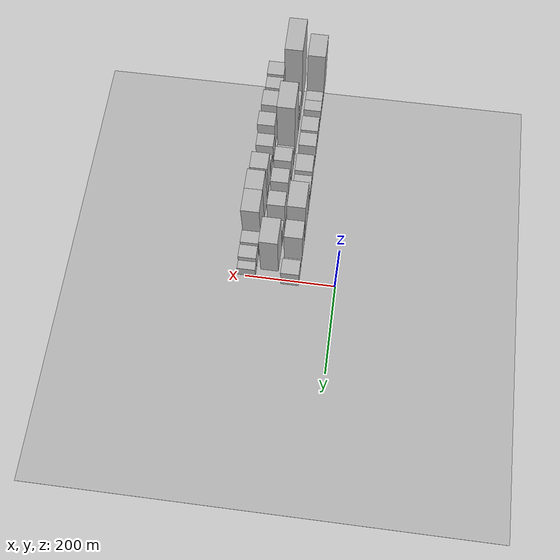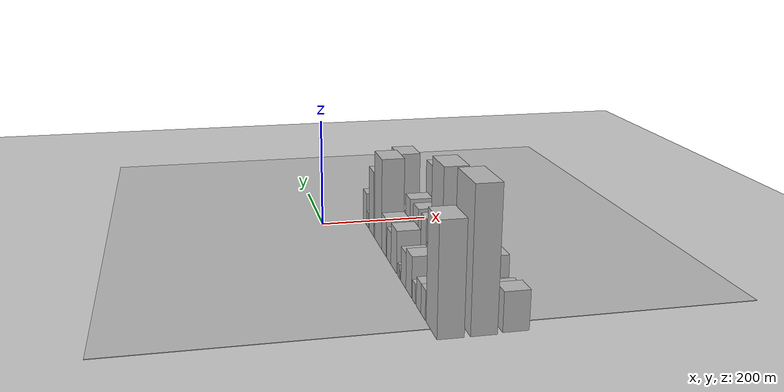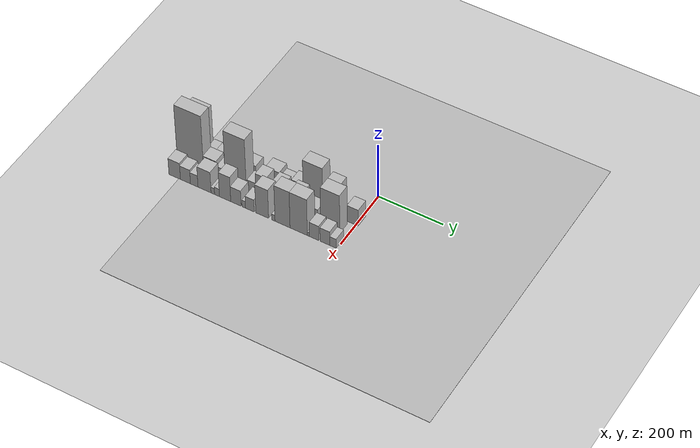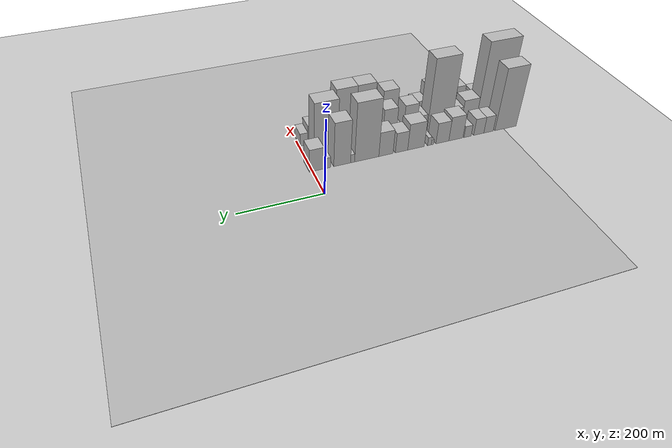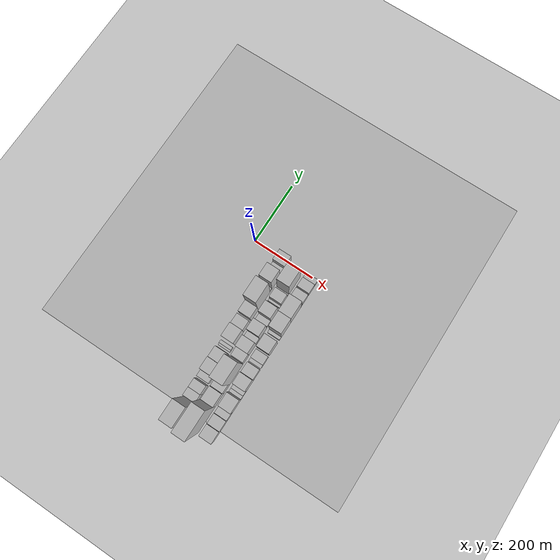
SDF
<sdf version="1.6">
 <world name="default">
  <include><name>ground_plane_1</name><uri>model://HANNAS_ground_plane</uri></include>
  <include>
   <name>ground_plane_2</name>
   <uri>model://HANNAS_ground_plane</uri>
   <pose>100 0 0  0 0 0</pose>
  </include>
  <model name="building_1">
   <static>1</static>
   <pose>100.0000 -505.8273 0 0.000000 0.000000 0.000000</pose>
   <link name="link">
    <pose>0 0 88.50 0 0 0</pose>
    <collision name="collision"><geometry><box><size>40.0000 60.3455 177.0000</size></box></geometry></collision>
    <visual name="visual">
     <cast_shadows>0</cast_shadows>
     <geometry><box><size>40.0000 60.3455 177.0000</size></box></geometry>
     <material>
      <script>
       <uri>model://HANNAS_wall/materials/scripts</uri>
       <uri>model://HANNAS_wall/materials/textures</uri>
       <name>vrc/HANNAS_wall</name>
      </script>
     </material>
    </visual>
   </link>
  </model>
  <model name="building_2">
   <static>1</static>
   <pose>100.0000 -457.5397 0 0.000000 0.000000 0.000000</pose>
   <link name="link">
    <pose>0 0 24.00 0 0 0</pose>
    <collision name="collision"><geometry><box><size>40.0000 26.2296 48.0000</size></box></geometry></collision>
    <visual name="visual">
     <cast_shadows>0</cast_shadows>
     <geometry><box><size>40.0000 26.2296 48.0000</size></box></geometry>
     <material>
      <script>
       <uri>model://HANNAS_wall/materials/scripts</uri>
       <uri>model://HANNAS_wall/materials/textures</uri>
       <name>vrc/HANNAS_wall</name>
      </script>
     </material>
    </visual>
   </link>
  </model>
  <model name="building_3">
   <static>1</static>
   <pose>100.0000 -430.3241 0 0.000000 0.000000 0.000000</pose>
   <link name="link">
    <pose>0 0 24.00 0 0 0</pose>
    <collision name="collision"><geometry><box><size>40.0000 28.2017 48.0000</size></box></geometry></collision>
    <visual name="visual">
     <cast_shadows>0</cast_shadows>
     <geometry><box><size>40.0000 28.2017 48.0000</size></box></geometry>
     <material>
      <script>
       <uri>model://HANNAS_wall/materials/scripts</uri>
       <uri>model://HANNAS_wall/materials/textures</uri>
       <name>vrc/HANNAS_wall</name>
      </script>
     </material>
    </visual>
   </link>
  </model>
  <model name="building_4">
   <static>1</static>
   <pose>100.0000 -399.3763 0 0.000000 0.000000 0.000000</pose>
   <link name="link">
    <pose>0 0 16.50 0 0 0</pose>
    <collision name="collision"><geometry><box><size>40.0000 19.6938 33.0000</size></box></geometry></collision>
    <visual name="visual">
     <cast_shadows>0</cast_shadows>
     <geometry><box><size>40.0000 19.6938 33.0000</size></box></geometry>
     <material>
      <script>
       <uri>model://HANNAS_wall/materials/scripts</uri>
       <uri>model://HANNAS_wall/materials/textures</uri>
       <name>vrc/HANNAS_wall</name>
      </script>
     </material>
    </visual>
   </link>
  </model>
  <model name="building_5">
   <static>1</static>
   <pose>100.0000 -367.3331 0 0.000000 0.000000 0.000000</pose>
   <link name="link">
    <pose>0 0 34.50 0 0 0</pose>
    <collision name="collision"><geometry><box><size>40.0000 38.3928 69.0000</size></box></geometry></collision>
    <visual name="visual">
     <cast_shadows>0</cast_shadows>
     <geometry><box><size>40.0000 38.3928 69.0000</size></box></geometry>
     <material>
      <script>
       <uri>model://HANNAS_wall/materials/scripts</uri>
       <uri>model://HANNAS_wall/materials/textures</uri>
       <name>vrc/HANNAS_wall</name>
      </script>
     </material>
    </visual>
   </link>
  </model>
  <model name="building_6">
   <static>1</static>
   <pose>100.0000 -330.7315 0 0.000000 0.000000 0.000000</pose>
   <link name="link">
    <pose>0 0 30.00 0 0 0</pose>
    <collision name="collision"><geometry><box><size>40.0000 34.8104 60.0000</size></box></geometry></collision>
    <visual name="visual">
     <cast_shadows>0</cast_shadows>
     <geometry><box><size>40.0000 34.8104 60.0000</size></box></geometry>
     <material>
      <script>
       <uri>model://HANNAS_wall/materials/scripts</uri>
       <uri>model://HANNAS_wall/materials/textures</uri>
       <name>vrc/HANNAS_wall</name>
      </script>
     </material>
    </visual>
   </link>
  </model>
  <model name="building_7">
   <static>1</static>
   <pose>100.0000 -304.1413 0 0.000000 0.000000 0.000000</pose>
   <link name="link">
    <pose>0 0 7.50 0 0 0</pose>
    <collision name="collision"><geometry><box><size>40.0000 6.3700 15.0000</size></box></geometry></collision>
    <visual name="visual">
     <cast_shadows>0</cast_shadows>
     <geometry><box><size>40.0000 6.3700 15.0000</size></box></geometry>
     <material>
      <script>
       <uri>model://HANNAS_wall/materials/scripts</uri>
       <uri>model://HANNAS_wall/materials/textures</uri>
       <name>vrc/HANNAS_wall</name>
      </script>
     </material>
    </visual>
   </link>
  </model>
  <model name="building_8">
   <static>1</static>
   <pose>100.0000 -296.1098 0 0.000000 0.000000 0.000000</pose>
   <link name="link">
    <pose>0 0 12.00 0 0 0</pose>
    <collision name="collision"><geometry><box><size>40.0000 9.6930 24.0000</size></box></geometry></collision>
    <visual name="visual">
     <cast_shadows>0</cast_shadows>
     <geometry><box><size>40.0000 9.6930 24.0000</size></box></geometry>
     <material>
      <script>
       <uri>model://HANNAS_wall/materials/scripts</uri>
       <uri>model://HANNAS_wall/materials/textures</uri>
       <name>vrc/HANNAS_wall</name>
      </script>
     </material>
    </visual>
   </link>
  </model>
  <model name="building_9">
   <static>1</static>
   <pose>100.0000 -260.4263 0 0.000000 0.000000 0.000000</pose>
   <link name="link">
    <pose>0 0 37.50 0 0 0</pose>
    <collision name="collision"><geometry><box><size>40.0000 43.6740 75.0000</size></box></geometry></collision>
    <visual name="visual">
     <cast_shadows>0</cast_shadows>
     <geometry><box><size>40.0000 43.6740 75.0000</size></box></geometry>
     <material>
      <script>
       <uri>model://HANNAS_wall/materials/scripts</uri>
       <uri>model://HANNAS_wall/materials/textures</uri>
       <name>vrc/HANNAS_wall</name>
      </script>
     </material>
    </visual>
   </link>
  </model>
  <model name="building_10">
   <static>1</static>
   <pose>100.0000 -222.5610 0 0.000000 0.000000 0.000000</pose>
   <link name="link">
    <pose>0 0 28.50 0 0 0</pose>
    <collision name="collision"><geometry><box><size>40.0000 32.0565 57.0000</size></box></geometry></collision>
    <visual name="visual">
     <cast_shadows>0</cast_shadows>
     <geometry><box><size>40.0000 32.0565 57.0000</size></box></geometry>
     <material>
      <script>
       <uri>model://HANNAS_wall/materials/scripts</uri>
       <uri>model://HANNAS_wall/materials/textures</uri>
       <name>vrc/HANNAS_wall</name>
      </script>
     </material>
    </visual>
   </link>
  </model>
  <model name="building_11">
   <static>1</static>
   <pose>100.0000 -182.3445 0 0.000000 0.000000 0.000000</pose>
   <link name="link">
    <pose>0 0 34.50 0 0 0</pose>
    <collision name="collision"><geometry><box><size>40.0000 36.3766 69.0000</size></box></geometry></collision>
    <visual name="visual">
     <cast_shadows>0</cast_shadows>
     <geometry><box><size>40.0000 36.3766 69.0000</size></box></geometry>
     <material>
      <script>
       <uri>model://HANNAS_wall/materials/scripts</uri>
       <uri>model://HANNAS_wall/materials/textures</uri>
       <name>vrc/HANNAS_wall</name>
      </script>
     </material>
    </visual>
   </link>
  </model>
  <model name="building_12">
   <static>1</static>
   <pose>100.0000 -133.5054 0 0.000000 0.000000 0.000000</pose>
   <link name="link">
    <pose>0 0 82.50 0 0 0</pose>
    <collision name="collision"><geometry><box><size>40.0000 61.3015 165.0000</size></box></geometry></collision>
    <visual name="visual">
     <cast_shadows>0</cast_shadows>
     <geometry><box><size>40.0000 61.3015 165.0000</size></box></geometry>
     <material>
      <script>
       <uri>model://HANNAS_wall/materials/scripts</uri>
       <uri>model://HANNAS_wall/materials/textures</uri>
       <name>vrc/HANNAS_wall</name>
      </script>
     </material>
    </visual>
   </link>
  </model>
  <model name="building_13">
   <static>1</static>
   <pose>100.0000 -97.8086 0 0.000000 0.000000 0.000000</pose>
   <link name="link">
    <pose>0 0 12.00 0 0 0</pose>
    <collision name="collision"><geometry><box><size>40.0000 10.0921 24.0000</size></box></geometry></collision>
    <visual name="visual">
     <cast_shadows>0</cast_shadows>
     <geometry><box><size>40.0000 10.0921 24.0000</size></box></geometry>
     <material>
      <script>
       <uri>model://HANNAS_wall/materials/scripts</uri>
       <uri>model://HANNAS_wall/materials/textures</uri>
       <name>vrc/HANNAS_wall</name>
      </script>
     </material>
    </visual>
   </link>
  </model>
  <model name="building_14">
   <static>1</static>
   <pose>100.0000 -72.0178 0 0.000000 0.000000 0.000000</pose>
   <link name="link">
    <pose>0 0 61.50 0 0 0</pose>
    <collision name="collision"><geometry><box><size>40.0000 41.4896 123.0000</size></box></geometry></collision>
    <visual name="visual">
     <cast_shadows>0</cast_shadows>
     <geometry><box><size>40.0000 41.4896 123.0000</size></box></geometry>
     <material>
      <script>
       <uri>model://HANNAS_wall/materials/scripts</uri>
       <uri>model://HANNAS_wall/materials/textures</uri>
       <name>vrc/HANNAS_wall</name>
      </script>
     </material>
    </visual>
   </link>
  </model>
  <model name="building_15">
   <static>1</static>
   <pose>100.0000 -35.1359 0 0.000000 0.000000 0.000000</pose>
   <link name="link">
    <pose>0 0 15.00 0 0 0</pose>
    <collision name="collision"><geometry><box><size>40.0000 16.2741 30.0000</size></box></geometry></collision>
    <visual name="visual">
     <cast_shadows>0</cast_shadows>
     <geometry><box><size>40.0000 16.2741 30.0000</size></box></geometry>
     <material>
      <script>
       <uri>model://HANNAS_wall/materials/scripts</uri>
       <uri>model://HANNAS_wall/materials/textures</uri>
       <name>vrc/HANNAS_wall</name>
      </script>
     </material>
    </visual>
   </link>
  </model>
  <model name="building_16">
   <static>1</static>
   <pose>100.0000 -9.4625 0 0.000000 0.000000 0.000000</pose>
   <link name="link">
    <pose>0 0 31.50 0 0 0</pose>
    <collision name="collision"><geometry><box><size>40.0000 35.0727 63.0000</size></box></geometry></collision>
    <visual name="visual">
     <cast_shadows>0</cast_shadows>
     <geometry><box><size>40.0000 35.0727 63.0000</size></box></geometry>
     <material>
      <script>
       <uri>model://HANNAS_wall/materials/scripts</uri>
       <uri>model://HANNAS_wall/materials/textures</uri>
       <name>vrc/HANNAS_wall</name>
      </script>
     </material>
    </visual>
   </link>
  </model>
  <model name="building_32">
   <static>1</static>
   <pose>149.0000 -493.4591 0 0.000000 0.000000 0.000000</pose>
   <link name="link">
    <pose>0 0 112.50 0 0 0</pose>
    <collision name="collision"><geometry><box><size>40.0000 85.0817 225.0000</size></box></geometry></collision>
    <visual name="visual">
     <cast_shadows>0</cast_shadows>
     <geometry><box><size>40.0000 85.0817 225.0000</size></box></geometry>
     <material>
      <script>
       <uri>model://HANNAS_wall/materials/scripts</uri>
       <uri>model://HANNAS_wall/materials/textures</uri>
       <name>vrc/HANNAS_wall</name>
      </script>
     </material>
    </visual>
   </link>
  </model>
  <model name="building_33">
   <static>1</static>
   <pose>149.0000 -429.9121 0 0.000000 0.000000 0.000000</pose>
   <link name="link">
    <pose>0 0 36.00 0 0 0</pose>
    <collision name="collision"><geometry><box><size>40.0000 42.0123 72.0000</size></box></geometry></collision>
    <visual name="visual">
     <cast_shadows>0</cast_shadows>
     <geometry><box><size>40.0000 42.0123 72.0000</size></box></geometry>
     <material>
      <script>
       <uri>model://HANNAS_wall/materials/scripts</uri>
       <uri>model://HANNAS_wall/materials/textures</uri>
       <name>vrc/HANNAS_wall</name>
      </script>
     </material>
    </visual>
   </link>
  </model>
  <model name="building_34">
   <static>1</static>
   <pose>149.0000 -394.9662 0 0.000000 0.000000 0.000000</pose>
   <link name="link">
    <pose>0 0 27.00 0 0 0</pose>
    <collision name="collision"><geometry><box><size>40.0000 27.8796 54.0000</size></box></geometry></collision>
    <visual name="visual">
     <cast_shadows>0</cast_shadows>
     <geometry><box><size>40.0000 27.8796 54.0000</size></box></geometry>
     <material>
      <script>
       <uri>model://HANNAS_wall/materials/scripts</uri>
       <uri>model://HANNAS_wall/materials/textures</uri>
       <name>vrc/HANNAS_wall</name>
      </script>
     </material>
    </visual>
   </link>
  </model>
  <model name="building_35">
   <static>1</static>
   <pose>149.0000 -347.5158 0 0.000000 0.000000 0.000000</pose>
   <link name="link">
    <pose>0 0 103.50 0 0 0</pose>
    <collision name="collision"><geometry><box><size>40.0000 67.0213 207.0000</size></box></geometry></collision>
    <visual name="visual">
     <cast_shadows>0</cast_shadows>
     <geometry><box><size>40.0000 67.0213 207.0000</size></box></geometry>
     <material>
      <script>
       <uri>model://HANNAS_wall/materials/scripts</uri>
       <uri>model://HANNAS_wall/materials/textures</uri>
       <name>vrc/HANNAS_wall</name>
      </script>
     </material>
    </visual>
   </link>
  </model>
  <model name="building_36">
   <static>1</static>
   <pose>149.0000 -297.4360 0 0.000000 0.000000 0.000000</pose>
   <link name="link">
    <pose>0 0 27.00 0 0 0</pose>
    <collision name="collision"><geometry><box><size>40.0000 27.1383 54.0000</size></box></geometry></collision>
    <visual name="visual">
     <cast_shadows>0</cast_shadows>
     <geometry><box><size>40.0000 27.1383 54.0000</size></box></geometry>
     <material>
      <script>
       <uri>model://HANNAS_wall/materials/scripts</uri>
       <uri>model://HANNAS_wall/materials/textures</uri>
       <name>vrc/HANNAS_wall</name>
      </script>
     </material>
    </visual>
   </link>
  </model>
  <model name="building_37">
   <static>1</static>
   <pose>149.0000 -266.2538 0 0.000000 0.000000 0.000000</pose>
   <link name="link">
    <pose>0 0 46.50 0 0 0</pose>
    <collision name="collision"><geometry><box><size>40.0000 35.2261 93.0000</size></box></geometry></collision>
    <visual name="visual">
     <cast_shadows>0</cast_shadows>
     <geometry><box><size>40.0000 35.2261 93.0000</size></box></geometry>
     <material>
      <script>
       <uri>model://HANNAS_wall/materials/scripts</uri>
       <uri>model://HANNAS_wall/materials/textures</uri>
       <name>vrc/HANNAS_wall</name>
      </script>
     </material>
    </visual>
   </link>
  </model>
  <model name="building_38">
   <static>1</static>
   <pose>149.0000 -239.3436 0 0.000000 0.000000 0.000000</pose>
   <link name="link">
    <pose>0 0 16.50 0 0 0</pose>
    <collision name="collision"><geometry><box><size>40.0000 18.5942 33.0000</size></box></geometry></collision>
    <visual name="visual">
     <cast_shadows>0</cast_shadows>
     <geometry><box><size>40.0000 18.5942 33.0000</size></box></geometry>
     <material>
      <script>
       <uri>model://HANNAS_wall/materials/scripts</uri>
       <uri>model://HANNAS_wall/materials/textures</uri>
       <name>vrc/HANNAS_wall</name>
      </script>
     </material>
    </visual>
   </link>
  </model>
  <model name="building_39">
   <static>1</static>
   <pose>149.0000 -212.3100 0 0.000000 0.000000 0.000000</pose>
   <link name="link">
    <pose>0 0 46.50 0 0 0</pose>
    <collision name="collision"><geometry><box><size>40.0000 35.4730 93.0000</size></box></geometry></collision>
    <visual name="visual">
     <cast_shadows>0</cast_shadows>
     <geometry><box><size>40.0000 35.4730 93.0000</size></box></geometry>
     <material>
      <script>
       <uri>model://HANNAS_wall/materials/scripts</uri>
       <uri>model://HANNAS_wall/materials/textures</uri>
       <name>vrc/HANNAS_wall</name>
      </script>
     </material>
    </visual>
   </link>
  </model>
  <model name="building_40">
   <static>1</static>
   <pose>149.0000 -182.0241 0 0.000000 0.000000 0.000000</pose>
   <link name="link">
    <pose>0 0 16.50 0 0 0</pose>
    <collision name="collision"><geometry><box><size>40.0000 19.0988 33.0000</size></box></geometry></collision>
    <visual name="visual">
     <cast_shadows>0</cast_shadows>
     <geometry><box><size>40.0000 19.0988 33.0000</size></box></geometry>
     <material>
      <script>
       <uri>model://HANNAS_wall/materials/scripts</uri>
       <uri>model://HANNAS_wall/materials/textures</uri>
       <name>vrc/HANNAS_wall</name>
      </script>
     </material>
    </visual>
   </link>
  </model>
  <model name="building_41">
   <static>1</static>
   <pose>149.0000 -154.5219 0 0.000000 0.000000 0.000000</pose>
   <link name="link">
    <pose>0 0 46.50 0 0 0</pose>
    <collision name="collision"><geometry><box><size>40.0000 35.9055 93.0000</size></box></geometry></collision>
    <visual name="visual">
     <cast_shadows>0</cast_shadows>
     <geometry><box><size>40.0000 35.9055 93.0000</size></box></geometry>
     <material>
      <script>
       <uri>model://HANNAS_wall/materials/scripts</uri>
       <uri>model://HANNAS_wall/materials/textures</uri>
       <name>vrc/HANNAS_wall</name>
      </script>
     </material>
    </visual>
   </link>
  </model>
  <model name="building_42">
   <static>1</static>
   <pose>149.0000 -123.6746 0 0.000000 0.000000 0.000000</pose>
   <link name="link">
    <pose>0 0 9.00 0 0 0</pose>
    <collision name="collision"><geometry><box><size>40.0000 7.7891 18.0000</size></box></geometry></collision>
    <visual name="visual">
     <cast_shadows>0</cast_shadows>
     <geometry><box><size>40.0000 7.7891 18.0000</size></box></geometry>
     <material>
      <script>
       <uri>model://HANNAS_wall/materials/scripts</uri>
       <uri>model://HANNAS_wall/materials/textures</uri>
       <name>vrc/HANNAS_wall</name>
      </script>
     </material>
    </visual>
   </link>
  </model>
  <model name="building_43">
   <static>1</static>
   <pose>149.0000 -103.9808 0 0.000000 0.000000 0.000000</pose>
   <link name="link">
    <pose>0 0 28.50 0 0 0</pose>
    <collision name="collision"><geometry><box><size>40.0000 31.5985 57.0000</size></box></geometry></collision>
    <visual name="visual">
     <cast_shadows>0</cast_shadows>
     <geometry><box><size>40.0000 31.5985 57.0000</size></box></geometry>
     <material>
      <script>
       <uri>model://HANNAS_wall/materials/scripts</uri>
       <uri>model://HANNAS_wall/materials/textures</uri>
       <name>vrc/HANNAS_wall</name>
      </script>
     </material>
    </visual>
   </link>
  </model>
  <model name="building_44">
   <static>1</static>
   <pose>149.0000 -84.0933 0 0.000000 0.000000 0.000000</pose>
   <link name="link">
    <pose>0 0 9.00 0 0 0</pose>
    <collision name="collision"><geometry><box><size>40.0000 8.1766 18.0000</size></box></geometry></collision>
    <visual name="visual">
     <cast_shadows>0</cast_shadows>
     <geometry><box><size>40.0000 8.1766 18.0000</size></box></geometry>
     <material>
      <script>
       <uri>model://HANNAS_wall/materials/scripts</uri>
       <uri>model://HANNAS_wall/materials/textures</uri>
       <name>vrc/HANNAS_wall</name>
      </script>
     </material>
    </visual>
   </link>
  </model>
  <model name="building_45">
   <static>1</static>
   <pose>149.0000 -50.3653 0 0.000000 0.000000 0.000000</pose>
   <link name="link">
    <pose>0 0 75.00 0 0 0</pose>
    <collision name="collision"><geometry><box><size>40.0000 59.2795 150.0000</size></box></geometry></collision>
    <visual name="visual">
     <cast_shadows>0</cast_shadows>
     <geometry><box><size>40.0000 59.2795 150.0000</size></box></geometry>
     <material>
      <script>
       <uri>model://HANNAS_wall/materials/scripts</uri>
       <uri>model://HANNAS_wall/materials/textures</uri>
       <name>vrc/HANNAS_wall</name>
      </script>
     </material>
    </visual>
   </link>
  </model>
  <model name="building_63">
   <static>1</static>
   <pose>198.0000 -513.4389 0 0.000000 0.000000 0.000000</pose>
   <link name="link">
    <pose>0 0 31.50 0 0 0</pose>
    <collision name="collision"><geometry><box><size>40.0000 37.1222 63.0000</size></box></geometry></collision>
    <visual name="visual">
     <cast_shadows>0</cast_shadows>
     <geometry><box><size>40.0000 37.1222 63.0000</size></box></geometry>
     <material>
      <script>
       <uri>model://HANNAS_wall/materials/scripts</uri>
       <uri>model://HANNAS_wall/materials/textures</uri>
       <name>vrc/HANNAS_wall</name>
      </script>
     </material>
    </visual>
   </link>
  </model>
  <model name="building_64">
   <static>1</static>
   <pose>198.0000 -478.7332 0 0.000000 0.000000 0.000000</pose>
   <link name="link">
    <pose>0 0 27.00 0 0 0</pose>
    <collision name="collision"><geometry><box><size>40.0000 32.2891 54.0000</size></box></geometry></collision>
    <visual name="visual">
     <cast_shadows>0</cast_shadows>
     <geometry><box><size>40.0000 32.2891 54.0000</size></box></geometry>
     <material>
      <script>
       <uri>model://HANNAS_wall/materials/scripts</uri>
       <uri>model://HANNAS_wall/materials/textures</uri>
       <name>vrc/HANNAS_wall</name>
      </script>
     </material>
    </visual>
   </link>
  </model>
  <model name="building_65">
   <static>1</static>
   <pose>198.0000 -450.4644 0 0.000000 0.000000 0.000000</pose>
   <link name="link">
    <pose>0 0 22.50 0 0 0</pose>
    <collision name="collision"><geometry><box><size>40.0000 24.2485 45.0000</size></box></geometry></collision>
    <visual name="visual">
     <cast_shadows>0</cast_shadows>
     <geometry><box><size>40.0000 24.2485 45.0000</size></box></geometry>
     <material>
      <script>
       <uri>model://HANNAS_wall/materials/scripts</uri>
       <uri>model://HANNAS_wall/materials/textures</uri>
       <name>vrc/HANNAS_wall</name>
      </script>
     </material>
    </visual>
   </link>
  </model>
  <model name="building_66">
   <static>1</static>
   <pose>198.0000 -417.3214 0 0.000000 0.000000 0.000000</pose>
   <link name="link">
    <pose>0 0 40.50 0 0 0</pose>
    <collision name="collision"><geometry><box><size>40.0000 42.0375 81.0000</size></box></geometry></collision>
    <visual name="visual">
     <cast_shadows>0</cast_shadows>
     <geometry><box><size>40.0000 42.0375 81.0000</size></box></geometry>
     <material>
      <script>
       <uri>model://HANNAS_wall/materials/scripts</uri>
       <uri>model://HANNAS_wall/materials/textures</uri>
       <name>vrc/HANNAS_wall</name>
      </script>
     </material>
    </visual>
   </link>
  </model>
  <model name="building_67">
   <static>1</static>
   <pose>198.0000 -390.6924 0 0.000000 0.000000 0.000000</pose>
   <link name="link">
    <pose>0 0 12.00 0 0 0</pose>
    <collision name="collision"><geometry><box><size>40.0000 11.2205 24.0000</size></box></geometry></collision>
    <visual name="visual">
     <cast_shadows>0</cast_shadows>
     <geometry><box><size>40.0000 11.2205 24.0000</size></box></geometry>
     <material>
      <script>
       <uri>model://HANNAS_wall/materials/scripts</uri>
       <uri>model://HANNAS_wall/materials/textures</uri>
       <name>vrc/HANNAS_wall</name>
      </script>
     </material>
    </visual>
   </link>
  </model>
  <model name="building_68">
   <static>1</static>
   <pose>198.0000 -377.2851 0 0.000000 0.000000 0.000000</pose>
   <link name="link">
    <pose>0 0 15.00 0 0 0</pose>
    <collision name="collision"><geometry><box><size>40.0000 15.5940 30.0000</size></box></geometry></collision>
    <visual name="visual">
     <cast_shadows>0</cast_shadows>
     <geometry><box><size>40.0000 15.5940 30.0000</size></box></geometry>
     <material>
      <script>
       <uri>model://HANNAS_wall/materials/scripts</uri>
       <uri>model://HANNAS_wall/materials/textures</uri>
       <name>vrc/HANNAS_wall</name>
      </script>
     </material>
    </visual>
   </link>
  </model>
  <model name="building_69">
   <static>1</static>
   <pose>198.0000 -351.4311 0 0.000000 0.000000 0.000000</pose>
   <link name="link">
    <pose>0 0 48.00 0 0 0</pose>
    <collision name="collision"><geometry><box><size>40.0000 36.1139 96.0000</size></box></geometry></collision>
    <visual name="visual">
     <cast_shadows>0</cast_shadows>
     <geometry><box><size>40.0000 36.1139 96.0000</size></box></geometry>
     <material>
      <script>
       <uri>model://HANNAS_wall/materials/scripts</uri>
       <uri>model://HANNAS_wall/materials/textures</uri>
       <name>vrc/HANNAS_wall</name>
      </script>
     </material>
    </visual>
   </link>
  </model>
  <model name="building_70">
   <static>1</static>
   <pose>198.0000 -316.9219 0 0.000000 0.000000 0.000000</pose>
   <link name="link">
    <pose>0 0 30.00 0 0 0</pose>
    <collision name="collision"><geometry><box><size>40.0000 32.9047 60.0000</size></box></geometry></collision>
    <visual name="visual">
     <cast_shadows>0</cast_shadows>
     <geometry><box><size>40.0000 32.9047 60.0000</size></box></geometry>
     <material>
      <script>
       <uri>model://HANNAS_wall/materials/scripts</uri>
       <uri>model://HANNAS_wall/materials/textures</uri>
       <name>vrc/HANNAS_wall</name>
      </script>
     </material>
    </visual>
   </link>
  </model>
  <model name="building_71">
   <static>1</static>
   <pose>198.0000 -292.0058 0 0.000000 0.000000 0.000000</pose>
   <link name="link">
    <pose>0 0 13.50 0 0 0</pose>
    <collision name="collision"><geometry><box><size>40.0000 10.9275 27.0000</size></box></geometry></collision>
    <visual name="visual">
     <cast_shadows>0</cast_shadows>
     <geometry><box><size>40.0000 10.9275 27.0000</size></box></geometry>
     <material>
      <script>
       <uri>model://HANNAS_wall/materials/scripts</uri>
       <uri>model://HANNAS_wall/materials/textures</uri>
       <name>vrc/HANNAS_wall</name>
      </script>
     </material>
    </visual>
   </link>
  </model>
  <model name="building_72">
   <static>1</static>
   <pose>198.0000 -272.7286 0 0.000000 0.000000 0.000000</pose>
   <link name="link">
    <pose>0 0 24.00 0 0 0</pose>
    <collision name="collision"><geometry><box><size>40.0000 27.6270 48.0000</size></box></geometry></collision>
    <visual name="visual">
     <cast_shadows>0</cast_shadows>
     <geometry><box><size>40.0000 27.6270 48.0000</size></box></geometry>
     <material>
      <script>
       <uri>model://HANNAS_wall/materials/scripts</uri>
       <uri>model://HANNAS_wall/materials/textures</uri>
       <name>vrc/HANNAS_wall</name>
      </script>
     </material>
    </visual>
   </link>
  </model>
  <model name="building_73">
   <static>1</static>
   <pose>198.0000 -233.6970 0 0.000000 0.000000 0.000000</pose>
   <link name="link">
    <pose>0 0 55.50 0 0 0</pose>
    <collision name="collision"><geometry><box><size>40.0000 40.4362 111.0000</size></box></geometry></collision>
    <visual name="visual">
     <cast_shadows>0</cast_shadows>
     <geometry><box><size>40.0000 40.4362 111.0000</size></box></geometry>
     <material>
      <script>
       <uri>model://HANNAS_wall/materials/scripts</uri>
       <uri>model://HANNAS_wall/materials/textures</uri>
       <name>vrc/HANNAS_wall</name>
      </script>
     </material>
    </visual>
   </link>
  </model>
  <model name="building_74">
   <static>1</static>
   <pose>198.0000 -198.3527 0 0.000000 0.000000 0.000000</pose>
   <link name="link">
    <pose>0 0 12.00 0 0 0</pose>
    <collision name="collision"><geometry><box><size>40.0000 10.2523 24.0000</size></box></geometry></collision>
    <visual name="visual">
     <cast_shadows>0</cast_shadows>
     <geometry><box><size>40.0000 10.2523 24.0000</size></box></geometry>
     <material>
      <script>
       <uri>model://HANNAS_wall/materials/scripts</uri>
       <uri>model://HANNAS_wall/materials/textures</uri>
       <name>vrc/HANNAS_wall</name>
      </script>
     </material>
    </visual>
   </link>
  </model>
  <model name="building_75">
   <static>1</static>
   <pose>198.0000 -169.6472 0 0.000000 0.000000 0.000000</pose>
   <link name="link">
    <pose>0 0 70.50 0 0 0</pose>
    <collision name="collision"><geometry><box><size>40.0000 47.1586 141.0000</size></box></geometry></collision>
    <visual name="visual">
     <cast_shadows>0</cast_shadows>
     <geometry><box><size>40.0000 47.1586 141.0000</size></box></geometry>
     <material>
      <script>
       <uri>model://HANNAS_wall/materials/scripts</uri>
       <uri>model://HANNAS_wall/materials/textures</uri>
       <name>vrc/HANNAS_wall</name>
      </script>
     </material>
    </visual>
   </link>
  </model>
  <model name="building_76">
   <static>1</static>
   <pose>198.0000 -119.1178 0 0.000000 0.000000 0.000000</pose>
   <link name="link">
    <pose>0 0 70.50 0 0 0</pose>
    <collision name="collision"><geometry><box><size>40.0000 53.9002 141.0000</size></box></geometry></collision>
    <visual name="visual">
     <cast_shadows>0</cast_shadows>
     <geometry><box><size>40.0000 53.9002 141.0000</size></box></geometry>
     <material>
      <script>
       <uri>model://HANNAS_wall/materials/scripts</uri>
       <uri>model://HANNAS_wall/materials/textures</uri>
       <name>vrc/HANNAS_wall</name>
      </script>
     </material>
    </visual>
   </link>
  </model>
  <model name="building_77">
   <static>1</static>
   <pose>198.0000 -88.9248 0 0.000000 0.000000 0.000000</pose>
   <link name="link">
    <pose>0 0 7.50 0 0 0</pose>
    <collision name="collision"><geometry><box><size>40.0000 6.4859 15.0000</size></box></geometry></collision>
    <visual name="visual">
     <cast_shadows>0</cast_shadows>
     <geometry><box><size>40.0000 6.4859 15.0000</size></box></geometry>
     <material>
      <script>
       <uri>model://HANNAS_wall/materials/scripts</uri>
       <uri>model://HANNAS_wall/materials/textures</uri>
       <name>vrc/HANNAS_wall</name>
      </script>
     </material>
    </visual>
   </link>
  </model>
  <model name="building_78">
   <static>1</static>
   <pose>198.0000 -71.0066 0 0.000000 0.000000 0.000000</pose>
   <link name="link">
    <pose>0 0 28.50 0 0 0</pose>
    <collision name="collision"><geometry><box><size>40.0000 29.3506 57.0000</size></box></geometry></collision>
    <visual name="visual">
     <cast_shadows>0</cast_shadows>
     <geometry><box><size>40.0000 29.3506 57.0000</size></box></geometry>
     <material>
      <script>
       <uri>model://HANNAS_wall/materials/scripts</uri>
       <uri>model://HANNAS_wall/materials/textures</uri>
       <name>vrc/HANNAS_wall</name>
      </script>
     </material>
    </visual>
   </link>
  </model>
  <model name="building_79">
   <static>1</static>
   <pose>198.0000 -37.2346 0 0.000000 0.000000 0.000000</pose>
   <link name="link">
    <pose>0 0 27.00 0 0 0</pose>
    <collision name="collision"><geometry><box><size>40.0000 30.1934 54.0000</size></box></geometry></collision>
    <visual name="visual">
     <cast_shadows>0</cast_shadows>
     <geometry><box><size>40.0000 30.1934 54.0000</size></box></geometry>
     <material>
      <script>
       <uri>model://HANNAS_wall/materials/scripts</uri>
       <uri>model://HANNAS_wall/materials/textures</uri>
       <name>vrc/HANNAS_wall</name>
      </script>
     </material>
    </visual>
   </link>
  </model>
  <model name="building_80">
   <static>1</static>
   <pose>198.0000 -12.2331 0 0.000000 0.000000 0.000000</pose>
   <link name="link">
    <pose>0 0 18.00 0 0 0</pose>
    <collision name="collision"><geometry><box><size>40.0000 19.8097 36.0000</size></box></geometry></collision>
    <visual name="visual">
     <cast_shadows>0</cast_shadows>
     <geometry><box><size>40.0000 19.8097 36.0000</size></box></geometry>
     <material>
      <script>
       <uri>model://HANNAS_wall/materials/scripts</uri>
       <uri>model://HANNAS_wall/materials/textures</uri>
       <name>vrc/HANNAS_wall</name>
      </script>
     </material>
    </visual>
   </link>
  </model>
 </world>
</sdf>
